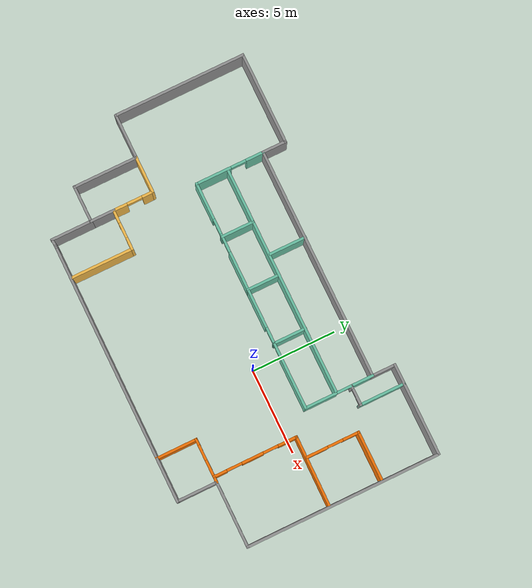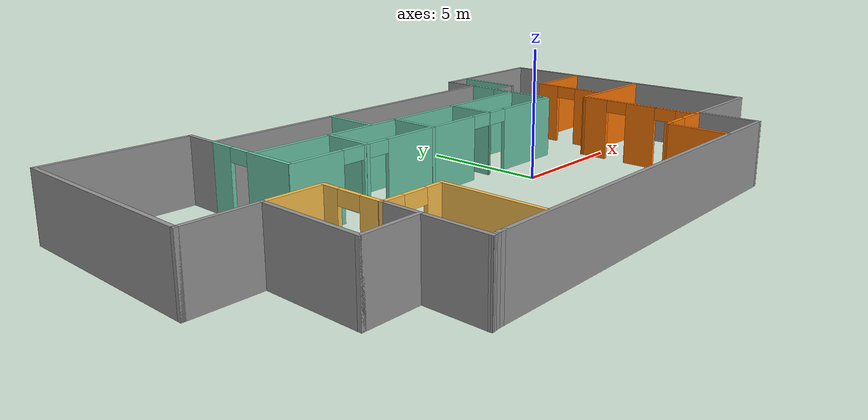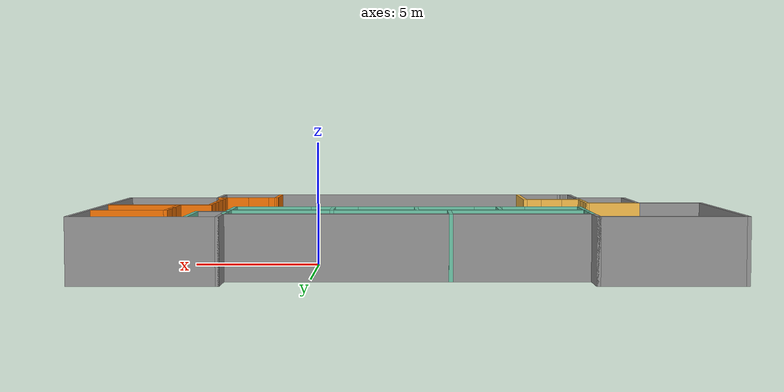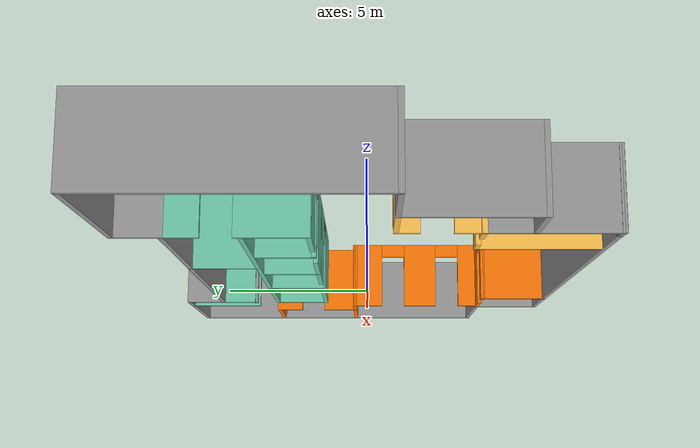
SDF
<?xml version='1.0'?>
<sdf version='1.6'>
  <model name='Building'>
    <pose frame=''>-3.6149 0.077124 0 0 -0 0</pose>
    <link name='Wall_0'>
      <collision name='Wall_0_Collision'>
        <geometry>
          <box>
            <size>15.4464 0.15 2.5</size>
          </box>
        </geometry>
        <pose frame=''>0 0 1.25 0 -0 0</pose>
      </collision>
      <visual name='Wall_0_Visual'>
        <pose frame=''>0 0 1.25 0 -0 0</pose>
        <geometry>
          <box>
            <size>15.4464 0.15 2.5</size>
          </box>
        </geometry>
        <material>
          <script>
            <uri>file://media/materials/scripts/gazebo.material</uri>
            <name>Gazebo/Grey</name>
          </script>
          <ambient>1 1 1 1</ambient>
        </material>
        <meta>
          <layer>0</layer>
        </meta>
      </visual>
      <pose frame=''>0.659705 -6.88049 0 0 -0 3.1411</pose>
    </link>
    <link name='Wall_100'>
      <collision name='Wall_100_Collision'>
        <geometry>
          <box>
            <size>4 0.15 2.5</size>
          </box>
        </geometry>
        <pose frame=''>0 0 1.25 0 -0 0</pose>
      </collision>
      <visual name='Wall_100_Visual'>
        <pose frame=''>0 0 1.25 0 -0 0</pose>
        <geometry>
          <box>
            <size>4 0.15 2.5</size>
          </box>
        </geometry>
        <material>
          <script>
            <uri>file://media/materials/scripts/gazebo.material</uri>
            <name>Gazebo/Grey</name>
          </script>
          <ambient>1 1 1 1</ambient>
        </material>
        <meta>
          <layer>0</layer>
        </meta>
      </visual>
      <pose frame=''>10.2329 -4.53429 0 0 -0 0</pose>
    </link>
    <link name='Wall_101'>
      <collision name='Wall_101_Collision'>
        <geometry>
          <box>
            <size>11.5 0.15 2.5</size>
          </box>
        </geometry>
        <pose frame=''>0 0 1.25 0 -0 0</pose>
      </collision>
      <visual name='Wall_101_Visual'>
        <pose frame=''>0 0 1.25 0 -0 0</pose>
        <geometry>
          <box>
            <size>11.5 0.15 2.5</size>
          </box>
        </geometry>
        <material>
          <script>
            <uri>file://media/materials/scripts/gazebo.material</uri>
            <name>Gazebo/Grey</name>
          </script>
          <ambient>1 1 1 1</ambient>
        </material>
        <meta>
          <layer>0</layer>
        </meta>
      </visual>
      <pose frame=''>12.1579 1.14071 0 0 -0 1.5708</pose>
    </link>
    <link name='Wall_103'>
      <collision name='Wall_103_Collision'>
        <geometry>
          <box>
            <size>4.2115 0.15 2.5</size>
          </box>
        </geometry>
        <pose frame=''>0 0 1.25 0 -0 0</pose>
      </collision>
      <visual name='Wall_103_Visual'>
        <pose frame=''>0 0 1.25 0 -0 0</pose>
        <geometry>
          <box>
            <size>4.2115 0.15 2.5</size>
          </box>
        </geometry>
        <material>
          <script>
            <uri>file://media/materials/scripts/gazebo.material</uri>
            <name>Gazebo/Grey</name>
          </script>
          <ambient>0.996078 0.47451 0.0196078 1</ambient>
        </material>
        <meta>
          <layer>0</layer>
        </meta>
      </visual>
      <pose frame=''>10.0108 0.393797 0 0 0 -0.00646</pose>
    </link>
    <link name='Wall_105'>
      <pose frame=''>9.21316 1.98664 0 0 -0 1.5708</pose>
      <visual name='Wall_105_Visual_0'>
        <pose frame=''>-0.959859 0 1.25 0 -0 0</pose>
        <geometry>
          <box>
            <size>1.33028 0.15 2.5</size>
          </box>
        </geometry>
        <material>
          <script>
            <uri>file://media/materials/scripts/gazebo.material</uri>
            <name>Gazebo/Grey</name>
          </script>
          <ambient>0.996078 0.47451 0.0196078 1</ambient>
        </material>
        <meta>
          <layer>0</layer>
        </meta>
      </visual>
      <collision name='Wall_105_Collision_0'>
        <geometry>
          <box>
            <size>1.33028 0.15 2.5</size>
          </box>
        </geometry>
        <pose frame=''>-0.959859 0 1.25 0 -0 0</pose>
      </collision>
      <visual name='Wall_105_Visual_1'>
        <pose frame=''>1.11514 0 1.25 0 -0 0</pose>
        <geometry>
          <box>
            <size>1.01972 0.15 2.5</size>
          </box>
        </geometry>
        <material>
          <script>
            <uri>file://media/materials/scripts/gazebo.material</uri>
            <name>Gazebo/Grey</name>
          </script>
          <ambient>0.996078 0.47451 0.0196078 1</ambient>
        </material>
        <meta>
          <layer>0</layer>
        </meta>
      </visual>
      <collision name='Wall_105_Collision_1'>
        <geometry>
          <box>
            <size>1.01972 0.15 2.5</size>
          </box>
        </geometry>
        <pose frame=''>1.11514 0 1.25 0 -0 0</pose>
      </collision>
      <visual name='Wall_105_Visual_2'>
        <pose frame=''>0.155281 0 2.25 0 -0 0</pose>
        <geometry>
          <box>
            <size>0.9 0.15 0.5</size>
          </box>
        </geometry>
        <material>
          <script>
            <uri>file://media/materials/scripts/gazebo.material</uri>
            <name>Gazebo/Grey</name>
          </script>
          <ambient>0.996078 0.47451 0.0196078 1</ambient>
        </material>
        <meta>
          <layer>0</layer>
        </meta>
      </visual>
      <collision name='Wall_105_Collision_2'>
        <geometry>
          <box>
            <size>0.9 0.15 0.5</size>
          </box>
        </geometry>
        <pose frame=''>0.155281 0 2.25 0 -0 0</pose>
      </collision>
    </link>
    <link name='Wall_106'>
      <collision name='Wall_106_Collision'>
        <geometry>
          <box>
            <size>2.90894 0.15 2.5</size>
          </box>
        </geometry>
        <pose frame=''>0 0 1.25 0 -0 0</pose>
      </collision>
      <visual name='Wall_106_Visual'>
        <pose frame=''>0 0 1.25 0 -0 0</pose>
        <geometry>
          <box>
            <size>2.90894 0.15 2.5</size>
          </box>
        </geometry>
        <material>
          <script>
            <uri>file://media/materials/scripts/gazebo.material</uri>
            <name>Gazebo/Grey</name>
          </script>
          <ambient>0.996078 0.47451 0.0196078 1</ambient>
        </material>
        <meta>
          <layer>0</layer>
        </meta>
      </visual>
      <pose frame=''>10.6189 3.53664 0 0 -0 0</pose>
    </link>
    <link name='Wall_108'>
      <collision name='Wall_108_Collision'>
        <geometry>
          <box>
            <size>13.75 0.15 2.5</size>
          </box>
        </geometry>
        <pose frame=''>0 0 1.25 0 -0 0</pose>
      </collision>
      <visual name='Wall_108_Visual'>
        <pose frame=''>0 0 1.25 0 -0 0</pose>
        <geometry>
          <box>
            <size>13.75 0.15 2.5</size>
          </box>
        </geometry>
        <material>
          <script>
            <uri>file://media/materials/scripts/gazebo.material</uri>
            <name>Gazebo/Grey</name>
          </script>
          <ambient>1 1 1 1</ambient>
        </material>
        <meta>
          <layer>0</layer>
        </meta>
      </visual>
      <pose frame=''>-0.00791 5.56584 0 0 -0 0</pose>
    </link>
    <link name='Wall_109'>
      <collision name='Wall_109_Collision'>
        <geometry>
          <box>
            <size>1.5 0.15 2.5</size>
          </box>
        </geometry>
        <pose frame=''>0 0 1.25 0 -0 0</pose>
      </collision>
      <visual name='Wall_109_Visual'>
        <pose frame=''>0 0 1.25 0 -0 0</pose>
        <geometry>
          <box>
            <size>1.5 0.15 2.5</size>
          </box>
        </geometry>
        <material>
          <script>
            <uri>file://media/materials/scripts/gazebo.material</uri>
            <name>Gazebo/Grey</name>
          </script>
          <ambient>1 1 1 1</ambient>
        </material>
        <meta>
          <layer>0</layer>
        </meta>
      </visual>
      <pose frame=''>6.79209 6.24084 0 0 -0 1.5708</pose>
    </link>
    <link name='Wall_110'>
      <collision name='Wall_110_Collision'>
        <geometry>
          <box>
            <size>5.5 0.15 2.5</size>
          </box>
        </geometry>
        <pose frame=''>0 0 1.25 0 -0 0</pose>
      </collision>
      <visual name='Wall_110_Visual'>
        <pose frame=''>0 0 1.25 0 -0 0</pose>
        <geometry>
          <box>
            <size>5.5 0.15 2.5</size>
          </box>
        </geometry>
        <material>
          <script>
            <uri>file://media/materials/scripts/gazebo.material</uri>
            <name>Gazebo/Grey</name>
          </script>
          <ambient>1 1 1 1</ambient>
        </material>
        <meta>
          <layer>0</layer>
        </meta>
      </visual>
      <pose frame=''>9.46709 6.91584 0 0 -0 0</pose>
    </link>
    <link name='Wall_112'>
      <pose frame=''>-6.80791 3.5629 0 0 0 -1.5708</pose>
      <visual name='Wall_112_Visual_0'>
        <pose frame=''>-1.51423 0 1.25 0 -0 0</pose>
        <geometry>
          <box>
            <size>1.12742 0.15 2.5</size>
          </box>
        </geometry>
        <material>
          <script>
            <uri>file://media/materials/scripts/gazebo.material</uri>
            <name>Gazebo/Grey</name>
          </script>
          <ambient>0.435294 0.796078 0.67451 1</ambient>
        </material>
        <meta>
          <layer>0</layer>
        </meta>
      </visual>
      <collision name='Wall_112_Collision_0'>
        <geometry>
          <box>
            <size>1.12742 0.15 2.5</size>
          </box>
        </geometry>
        <pose frame=''>-1.51423 0 1.25 0 -0 0</pose>
      </collision>
      <visual name='Wall_112_Visual_1'>
        <pose frame=''>1.01371 0 1.25 0 -0 0</pose>
        <geometry>
          <box>
            <size>2.12846 0.15 2.5</size>
          </box>
        </geometry>
        <material>
          <script>
            <uri>file://media/materials/scripts/gazebo.material</uri>
            <name>Gazebo/Grey</name>
          </script>
          <ambient>0.435294 0.796078 0.67451 1</ambient>
        </material>
        <meta>
          <layer>0</layer>
        </meta>
      </visual>
      <collision name='Wall_112_Collision_1'>
        <geometry>
          <box>
            <size>2.12846 0.15 2.5</size>
          </box>
        </geometry>
        <pose frame=''>1.01371 0 1.25 0 -0 0</pose>
      </collision>
      <visual name='Wall_112_Visual_2'>
        <pose frame=''>-0.500522 0 2.25 0 -0 0</pose>
        <geometry>
          <box>
            <size>0.9 0.15 0.5</size>
          </box>
        </geometry>
        <material>
          <script>
            <uri>file://media/materials/scripts/gazebo.material</uri>
            <name>Gazebo/Grey</name>
          </script>
          <ambient>0.435294 0.796078 0.67451 1</ambient>
        </material>
        <meta>
          <layer>0</layer>
        </meta>
      </visual>
      <collision name='Wall_112_Collision_2'>
        <geometry>
          <box>
            <size>0.9 0.15 0.5</size>
          </box>
        </geometry>
        <pose frame=''>-0.500522 0 2.25 0 -0 0</pose>
      </collision>
    </link>
    <link name='Wall_113'>
      <pose frame=''>-0.00791 1.53373 0 0 -0 0</pose>
      <visual name='Wall_113_Visual_0'>
        <pose frame=''>-5.76104 0 1.25 0 -0 0</pose>
        <geometry>
          <box>
            <size>2.22792 0.15 2.5</size>
          </box>
        </geometry>
        <material>
          <script>
            <uri>file://media/materials/scripts/gazebo.material</uri>
            <name>Gazebo/Grey</name>
          </script>
          <ambient>0.435294 0.796078 0.67451 1</ambient>
        </material>
        <meta>
          <layer>0</layer>
        </meta>
      </visual>
      <collision name='Wall_113_Collision_0'>
        <geometry>
          <box>
            <size>2.22792 0.15 2.5</size>
          </box>
        </geometry>
        <pose frame=''>-5.76104 0 1.25 0 -0 0</pose>
      </collision>
      <visual name='Wall_113_Visual_1'>
        <pose frame=''>-3.64064 0 1.25 0 -0 0</pose>
        <geometry>
          <box>
            <size>0.212887 0.15 2.5</size>
          </box>
        </geometry>
        <material>
          <script>
            <uri>file://media/materials/scripts/gazebo.material</uri>
            <name>Gazebo/Grey</name>
          </script>
          <ambient>0.435294 0.796078 0.67451 1</ambient>
        </material>
        <meta>
          <layer>0</layer>
        </meta>
      </visual>
      <collision name='Wall_113_Collision_1'>
        <geometry>
          <box>
            <size>0.212887 0.15 2.5</size>
          </box>
        </geometry>
        <pose frame=''>-3.64064 0 1.25 0 -0 0</pose>
      </collision>
      <visual name='Wall_113_Visual_2'>
        <pose frame=''>-0.340349 0 1.25 0 -0 0</pose>
        <geometry>
          <box>
            <size>4.58769 0.15 2.5</size>
          </box>
        </geometry>
        <material>
          <script>
            <uri>file://media/materials/scripts/gazebo.material</uri>
            <name>Gazebo/Grey</name>
          </script>
          <ambient>0.435294 0.796078 0.67451 1</ambient>
        </material>
        <meta>
          <layer>0</layer>
        </meta>
      </visual>
      <collision name='Wall_113_Collision_2'>
        <geometry>
          <box>
            <size>4.58769 0.15 2.5</size>
          </box>
        </geometry>
        <pose frame=''>-0.340349 0 1.25 0 -0 0</pose>
      </collision>
      <visual name='Wall_113_Visual_3'>
        <pose frame=''>2.88319 0 1.25 0 -0 0</pose>
        <geometry>
          <box>
            <size>0.059386 0.15 2.5</size>
          </box>
        </geometry>
        <material>
          <script>
            <uri>file://media/materials/scripts/gazebo.material</uri>
            <name>Gazebo/Grey</name>
          </script>
          <ambient>0.435294 0.796078 0.67451 1</ambient>
        </material>
        <meta>
          <layer>0</layer>
        </meta>
      </visual>
      <collision name='Wall_113_Collision_3'>
        <geometry>
          <box>
            <size>0.059386 0.15 2.5</size>
          </box>
        </geometry>
        <pose frame=''>2.88319 0 1.25 0 -0 0</pose>
      </collision>
      <visual name='Wall_113_Visual_4'>
        <pose frame=''>5.34394 0 1.25 0 -0 0</pose>
        <geometry>
          <box>
            <size>3.06212 0.15 2.5</size>
          </box>
        </geometry>
        <material>
          <script>
            <uri>file://media/materials/scripts/gazebo.material</uri>
            <name>Gazebo/Grey</name>
          </script>
          <ambient>0.435294 0.796078 0.67451 1</ambient>
        </material>
        <meta>
          <layer>0</layer>
        </meta>
      </visual>
      <collision name='Wall_113_Collision_4'>
        <geometry>
          <box>
            <size>3.06212 0.15 2.5</size>
          </box>
        </geometry>
        <pose frame=''>5.34394 0 1.25 0 -0 0</pose>
      </collision>
      <visual name='Wall_113_Visual_5'>
        <pose frame=''>-4.19708 0 2.25 0 -0 0</pose>
        <geometry>
          <box>
            <size>0.9 0.15 0.5</size>
          </box>
        </geometry>
        <material>
          <script>
            <uri>file://media/materials/scripts/gazebo.material</uri>
            <name>Gazebo/Grey</name>
          </script>
          <ambient>0.435294 0.796078 0.67451 1</ambient>
        </material>
        <meta>
          <layer>0</layer>
        </meta>
      </visual>
      <collision name='Wall_113_Collision_5'>
        <geometry>
          <box>
            <size>0.9 0.15 0.5</size>
          </box>
        </geometry>
        <pose frame=''>-4.19708 0 2.25 0 -0 0</pose>
      </collision>
      <visual name='Wall_113_Visual_6'>
        <pose frame=''>-3.08419 0 2.25 0 -0 0</pose>
        <geometry>
          <box>
            <size>0.9 0.15 0.5</size>
          </box>
        </geometry>
        <material>
          <script>
            <uri>file://media/materials/scripts/gazebo.material</uri>
            <name>Gazebo/Grey</name>
          </script>
          <ambient>0.435294 0.796078 0.67451 1</ambient>
        </material>
        <meta>
          <layer>0</layer>
        </meta>
      </visual>
      <collision name='Wall_113_Collision_6'>
        <geometry>
          <box>
            <size>0.9 0.15 0.5</size>
          </box>
        </geometry>
        <pose frame=''>-3.08419 0 2.25 0 -0 0</pose>
      </collision>
      <visual name='Wall_113_Visual_7'>
        <pose frame=''>2.40349 0 2.25 0 -0 0</pose>
        <geometry>
          <box>
            <size>0.9 0.15 0.5</size>
          </box>
        </geometry>
        <material>
          <script>
            <uri>file://media/materials/scripts/gazebo.material</uri>
            <name>Gazebo/Grey</name>
          </script>
          <ambient>0.435294 0.796078 0.67451 1</ambient>
        </material>
        <meta>
          <layer>0</layer>
        </meta>
      </visual>
      <collision name='Wall_113_Collision_7'>
        <geometry>
          <box>
            <size>0.9 0.15 0.5</size>
          </box>
        </geometry>
        <pose frame=''>2.40349 0 2.25 0 -0 0</pose>
      </collision>
      <visual name='Wall_113_Visual_8'>
        <pose frame=''>3.36288 0 2.25 0 -0 0</pose>
        <geometry>
          <box>
            <size>0.9 0.15 0.5</size>
          </box>
        </geometry>
        <material>
          <script>
            <uri>file://media/materials/scripts/gazebo.material</uri>
            <name>Gazebo/Grey</name>
          </script>
          <ambient>0.435294 0.796078 0.67451 1</ambient>
        </material>
        <meta>
          <layer>0</layer>
        </meta>
      </visual>
      <collision name='Wall_113_Collision_8'>
        <geometry>
          <box>
            <size>0.9 0.15 0.5</size>
          </box>
        </geometry>
        <pose frame=''>3.36288 0 2.25 0 -0 0</pose>
      </collision>
    </link>
    <link name='Wall_115'>
      <pose frame=''>6.79209 3.5629 0 0 -0 1.5708</pose>
      <visual name='Wall_115_Visual_0'>
        <pose frame=''>-1.1087 0 1.25 0 -0 0</pose>
        <geometry>
          <box>
            <size>1.93847 0.15 2.5</size>
          </box>
        </geometry>
        <material>
          <script>
            <uri>file://media/materials/scripts/gazebo.material</uri>
            <name>Gazebo/Grey</name>
          </script>
          <ambient>0.435294 0.796078 0.67451 1</ambient>
        </material>
        <meta>
          <layer>0</layer>
        </meta>
      </visual>
      <collision name='Wall_115_Collision_0'>
        <geometry>
          <box>
            <size>1.93847 0.15 2.5</size>
          </box>
        </geometry>
        <pose frame=''>-1.1087 0 1.25 0 -0 0</pose>
      </collision>
      <visual name='Wall_115_Visual_1'>
        <pose frame=''>1.41924 0 1.25 0 -0 0</pose>
        <geometry>
          <box>
            <size>1.3174 0.15 2.5</size>
          </box>
        </geometry>
        <material>
          <script>
            <uri>file://media/materials/scripts/gazebo.material</uri>
            <name>Gazebo/Grey</name>
          </script>
          <ambient>0.435294 0.796078 0.67451 1</ambient>
        </material>
        <meta>
          <layer>0</layer>
        </meta>
      </visual>
      <collision name='Wall_115_Collision_1'>
        <geometry>
          <box>
            <size>1.3174 0.15 2.5</size>
          </box>
        </geometry>
        <pose frame=''>1.41924 0 1.25 0 -0 0</pose>
      </collision>
      <visual name='Wall_115_Visual_2'>
        <pose frame=''>0.310536 0 2.25 0 -0 0</pose>
        <geometry>
          <box>
            <size>0.9 0.15 0.5</size>
          </box>
        </geometry>
        <material>
          <script>
            <uri>file://media/materials/scripts/gazebo.material</uri>
            <name>Gazebo/Grey</name>
          </script>
          <ambient>0.435294 0.796078 0.67451 1</ambient>
        </material>
        <meta>
          <layer>0</layer>
        </meta>
      </visual>
      <collision name='Wall_115_Collision_2'>
        <geometry>
          <box>
            <size>0.9 0.15 0.5</size>
          </box>
        </geometry>
        <pose frame=''>0.310536 0 2.25 0 -0 0</pose>
      </collision>
    </link>
    <link name='Wall_117'>
      <pose frame=''>7.37576 4.2932 0 0 -0 0</pose>
      <visual name='Wall_117_Visual_0'>
        <pose frame=''>-0.510796 0 1.25 0 -0 0</pose>
        <geometry>
          <box>
            <size>0.228407 0.15 2.5</size>
          </box>
        </geometry>
        <material>
          <script>
            <uri>file://media/materials/scripts/gazebo.material</uri>
            <name>Gazebo/Grey</name>
          </script>
          <ambient>1 1 1 1</ambient>
        </material>
        <meta>
          <layer>0</layer>
        </meta>
      </visual>
      <collision name='Wall_117_Collision_0'>
        <geometry>
          <box>
            <size>0.228407 0.15 2.5</size>
          </box>
        </geometry>
        <pose frame=''>-0.510796 0 1.25 0 -0 0</pose>
      </collision>
      <visual name='Wall_117_Visual_1'>
        <pose frame=''>0.564204 0 1.25 0 -0 0</pose>
        <geometry>
          <box>
            <size>0.121593 0.15 2.5</size>
          </box>
        </geometry>
        <material>
          <script>
            <uri>file://media/materials/scripts/gazebo.material</uri>
            <name>Gazebo/Grey</name>
          </script>
          <ambient>1 1 1 1</ambient>
        </material>
        <meta>
          <layer>0</layer>
        </meta>
      </visual>
      <collision name='Wall_117_Collision_1'>
        <geometry>
          <box>
            <size>0.121593 0.15 2.5</size>
          </box>
        </geometry>
        <pose frame=''>0.564204 0 1.25 0 -0 0</pose>
      </collision>
      <visual name='Wall_117_Visual_2'>
        <pose frame=''>0.053407 0 2.25 0 -0 0</pose>
        <geometry>
          <box>
            <size>0.9 0.15 0.5</size>
          </box>
        </geometry>
        <material>
          <script>
            <uri>file://media/materials/scripts/gazebo.material</uri>
            <name>Gazebo/Grey</name>
          </script>
          <ambient>1 1 1 1</ambient>
        </material>
        <meta>
          <layer>0</layer>
        </meta>
      </visual>
      <collision name='Wall_117_Collision_2'>
        <geometry>
          <box>
            <size>0.9 0.15 0.5</size>
          </box>
        </geometry>
        <pose frame=''>0.053407 0 2.25 0 -0 0</pose>
      </collision>
    </link>
    <link name='Wall_118'>
      <collision name='Wall_118_Collision'>
        <geometry>
          <box>
            <size>2.75 0.15 2.5</size>
          </box>
        </geometry>
        <pose frame=''>0 0 1.25 0 -0 0</pose>
      </collision>
      <visual name='Wall_118_Visual'>
        <pose frame=''>0 0 1.25 0 -0 0</pose>
        <geometry>
          <box>
            <size>2.75 0.15 2.5</size>
          </box>
        </geometry>
        <material>
          <script>
            <uri>file://media/materials/scripts/gazebo.material</uri>
            <name>Gazebo/Grey</name>
          </script>
          <ambient>0.435294 0.796078 0.67451 1</ambient>
        </material>
        <meta>
          <layer>0</layer>
        </meta>
      </visual>
      <pose frame=''>7.92576 5.5932 0 0 -0 1.5708</pose>
    </link>
    <link name='Wall_123'>
      <collision name='Wall_123_Collision'>
        <geometry>
          <box>
            <size>13.5 0.15 2.5</size>
          </box>
        </geometry>
        <pose frame=''>0 0 1.25 0 -0 0</pose>
      </collision>
      <visual name='Wall_123_Visual'>
        <pose frame=''>0 0 1.25 0 -0 0</pose>
        <geometry>
          <box>
            <size>13.5 0.15 2.5</size>
          </box>
        </geometry>
        <material>
          <script>
            <uri>file://media/materials/scripts/gazebo.material</uri>
            <name>Gazebo/Grey</name>
          </script>
          <ambient>0.435294 0.796078 0.67451 1</ambient>
        </material>
        <meta>
          <layer>0</layer>
        </meta>
      </visual>
      <pose frame=''>-0.010311 3.40121 0 0 -0 0</pose>
    </link>
    <link name='Wall_125'>
      <collision name='Wall_125_Collision'>
        <geometry>
          <box>
            <size>2 0.15 2.5</size>
          </box>
        </geometry>
        <pose frame=''>0 0 1.25 0 -0 0</pose>
      </collision>
      <visual name='Wall_125_Visual'>
        <pose frame=''>0 0 1.25 0 -0 0</pose>
        <geometry>
          <box>
            <size>2 0.15 2.5</size>
          </box>
        </geometry>
        <material>
          <script>
            <uri>file://media/materials/scripts/gazebo.material</uri>
            <name>Gazebo/Grey</name>
          </script>
          <ambient>0.435294 0.796078 0.67451 1</ambient>
        </material>
        <meta>
          <layer>0</layer>
        </meta>
      </visual>
      <pose frame=''>-3.58427 2.45408 0 0 0 -1.5708</pose>
    </link>
    <link name='Wall_127'>
      <collision name='Wall_127_Collision'>
        <geometry>
          <box>
            <size>2 0.15 2.5</size>
          </box>
        </geometry>
        <pose frame=''>0 0 1.25 0 -0 0</pose>
      </collision>
      <visual name='Wall_127_Visual'>
        <pose frame=''>0 0 1.25 0 -0 0</pose>
        <geometry>
          <box>
            <size>2 0.15 2.5</size>
          </box>
        </geometry>
        <material>
          <script>
            <uri>file://media/materials/scripts/gazebo.material</uri>
            <name>Gazebo/Grey</name>
          </script>
          <ambient>0.435294 0.796078 0.67451 1</ambient>
        </material>
        <meta>
          <layer>0</layer>
        </meta>
      </visual>
      <pose frame=''>-0.352492 2.4529 0 0 0 -1.5708</pose>
    </link>
    <link name='Wall_129'>
      <collision name='Wall_129_Collision'>
        <geometry>
          <box>
            <size>2 0.15 2.5</size>
          </box>
        </geometry>
        <pose frame=''>0 0 1.25 0 -0 0</pose>
      </collision>
      <visual name='Wall_129_Visual'>
        <pose frame=''>0 0 1.25 0 -0 0</pose>
        <geometry>
          <box>
            <size>2 0.15 2.5</size>
          </box>
        </geometry>
        <material>
          <script>
            <uri>file://media/materials/scripts/gazebo.material</uri>
            <name>Gazebo/Grey</name>
          </script>
          <ambient>0.435294 0.796078 0.67451 1</ambient>
        </material>
        <meta>
          <layer>0</layer>
        </meta>
      </visual>
      <pose frame=''>2.89949 2.48922 0 0 0 -1.5708</pose>
    </link>
    <link name='Wall_131'>
      <collision name='Wall_131_Collision'>
        <geometry>
          <box>
            <size>2.25 0.15 2.5</size>
          </box>
        </geometry>
        <pose frame=''>0 0 1.25 0 -0 0</pose>
      </collision>
      <visual name='Wall_131_Visual'>
        <pose frame=''>0 0 1.25 0 -0 0</pose>
        <geometry>
          <box>
            <size>2.25 0.15 2.5</size>
          </box>
        </geometry>
        <material>
          <script>
            <uri>file://media/materials/scripts/gazebo.material</uri>
            <name>Gazebo/Grey</name>
          </script>
          <ambient>0.435294 0.796078 0.67451 1</ambient>
        </material>
        <meta>
          <layer>0</layer>
        </meta>
      </visual>
      <pose frame=''>-1.5855 4.52422 0 0 0 -1.5708</pose>
    </link>
    <link name='Wall_49'>
      <collision name='Wall_49_Collision'>
        <geometry>
          <box>
            <size>0.36941 0.15 2.5</size>
          </box>
        </geometry>
        <pose frame=''>0 0 1.25 0 -0 0</pose>
      </collision>
      <visual name='Wall_49_Visual'>
        <pose frame=''>0 0 1.25 0 -0 0</pose>
        <geometry>
          <box>
            <size>0.36941 0.15 2.5</size>
          </box>
        </geometry>
        <material>
          <script>
            <uri>file://media/materials/scripts/gazebo.material</uri>
            <name>Gazebo/Grey</name>
          </script>
          <ambient>1 1 1 1</ambient>
        </material>
        <meta>
          <layer>0</layer>
        </meta>
      </visual>
      <pose frame=''>-7.09821 -6.8767 0 0 -0 0</pose>
    </link>
    <link name='Wall_57'>
      <collision name='Wall_57_Collision'>
        <geometry>
          <box>
            <size>2.25 0.15 2.5</size>
          </box>
        </geometry>
        <pose frame=''>0 0 1.25 0 -0 0</pose>
      </collision>
      <visual name='Wall_57_Visual'>
        <pose frame=''>0 0 1.25 0 -0 0</pose>
        <geometry>
          <box>
            <size>2.25 0.15 2.5</size>
          </box>
        </geometry>
        <material>
          <script>
            <uri>file://media/materials/scripts/gazebo.material</uri>
            <name>Gazebo/Grey</name>
          </script>
          <ambient>1 1 1 1</ambient>
        </material>
        <meta>
          <layer>0</layer>
        </meta>
      </visual>
      <pose frame=''>-8.50791 -4.55729 0 0 -0 0</pose>
    </link>
    <link name='Wall_58'>
      <collision name='Wall_58_Collision'>
        <geometry>
          <box>
            <size>2.5 0.15 2.5</size>
          </box>
        </geometry>
        <pose frame=''>0 0 1.25 0 -0 0</pose>
      </collision>
      <visual name='Wall_58_Visual'>
        <pose frame=''>0 0 1.25 0 -0 0</pose>
        <geometry>
          <box>
            <size>2.5 0.15 2.5</size>
          </box>
        </geometry>
        <material>
          <script>
            <uri>file://media/materials/scripts/gazebo.material</uri>
            <name>Gazebo/Grey</name>
          </script>
          <ambient>1 1 1 1</ambient>
        </material>
        <meta>
          <layer>0</layer>
        </meta>
      </visual>
      <pose frame=''>-7.45791 -5.73229 0 0 0 -1.5708</pose>
    </link>
    <link name='Wall_59'>
      <collision name='Wall_59_Collision'>
        <geometry>
          <box>
            <size>0.401865 0.15 2.5</size>
          </box>
        </geometry>
        <pose frame=''>0 0 1.25 0 -0 0</pose>
      </collision>
      <visual name='Wall_59_Visual'>
        <pose frame=''>0 0 1.25 0 -0 0</pose>
        <geometry>
          <box>
            <size>0.401865 0.15 2.5</size>
          </box>
        </geometry>
        <material>
          <script>
            <uri>file://media/materials/scripts/gazebo.material</uri>
            <name>Gazebo/Grey</name>
          </script>
          <ambient>1 1 1 1</ambient>
        </material>
        <meta>
          <layer>0</layer>
        </meta>
      </visual>
      <pose frame=''>-7.33291 -6.89199 0 0 -0 0.121756</pose>
    </link>
    <link name='Wall_6'>
      <collision name='Wall_6_Collision'>
        <geometry>
          <box>
            <size>5.5 0.15 2.5</size>
          </box>
        </geometry>
        <pose frame=''>0 0 1.25 0 -0 0</pose>
      </collision>
      <visual name='Wall_6_Visual'>
        <pose frame=''>0 0 1.25 0 -0 0</pose>
        <geometry>
          <box>
            <size>5.5 0.15 2.5</size>
          </box>
        </geometry>
        <material>
          <script>
            <uri>file://media/materials/scripts/gazebo.material</uri>
            <name>Gazebo/Grey</name>
          </script>
          <ambient>1 1 1 1</ambient>
        </material>
        <meta>
          <layer>0</layer>
        </meta>
      </visual>
      <pose frame=''>-9.48291 6.91584 0 0 -0 0</pose>
    </link>
    <link name='Wall_61'>
      <collision name='Wall_61_Collision'>
        <geometry>
          <box>
            <size>3.75 0.15 2.5</size>
          </box>
        </geometry>
        <pose frame=''>0 0 1.25 0 -0 0</pose>
      </collision>
      <visual name='Wall_61_Visual'>
        <pose frame=''>0 0 1.25 0 -0 0</pose>
        <geometry>
          <box>
            <size>3.75 0.15 2.5</size>
          </box>
        </geometry>
        <material>
          <script>
            <uri>file://media/materials/scripts/gazebo.material</uri>
            <name>Gazebo/Grey</name>
          </script>
          <ambient>1 0.764706 0.305882 1</ambient>
        </material>
        <meta>
          <layer>0</layer>
        </meta>
      </visual>
      <pose frame=''>-5.10791 -4.98734 0 0 -0 1.5708</pose>
    </link>
    <link name='Wall_62'>
      <pose frame=''>-6.28291 -3.18734 0 0 -0 3.14159</pose>
      <visual name='Wall_62_Visual_0'>
        <pose frame=''>-0.871798 0 1.25 0 -0 0</pose>
        <geometry>
          <box>
            <size>0.756404 0.15 2.5</size>
          </box>
        </geometry>
        <material>
          <script>
            <uri>file://media/materials/scripts/gazebo.material</uri>
            <name>Gazebo/Grey</name>
          </script>
          <ambient>1 0.764706 0.305882 1</ambient>
        </material>
        <meta>
          <layer>0</layer>
        </meta>
      </visual>
      <collision name='Wall_62_Collision_0'>
        <geometry>
          <box>
            <size>0.756404 0.15 2.5</size>
          </box>
        </geometry>
        <pose frame=''>-0.871798 0 1.25 0 -0 0</pose>
      </collision>
      <visual name='Wall_62_Visual_1'>
        <pose frame=''>0.828202 0 1.25 0 -0 0</pose>
        <geometry>
          <box>
            <size>0.843596 0.15 2.5</size>
          </box>
        </geometry>
        <material>
          <script>
            <uri>file://media/materials/scripts/gazebo.material</uri>
            <name>Gazebo/Grey</name>
          </script>
          <ambient>1 0.764706 0.305882 1</ambient>
        </material>
        <meta>
          <layer>0</layer>
        </meta>
      </visual>
      <collision name='Wall_62_Collision_1'>
        <geometry>
          <box>
            <size>0.843596 0.15 2.5</size>
          </box>
        </geometry>
        <pose frame=''>0.828202 0 1.25 0 -0 0</pose>
      </collision>
      <visual name='Wall_62_Visual_2'>
        <pose frame=''>-0.043596 0 2.25 0 -0 0</pose>
        <geometry>
          <box>
            <size>0.9 0.15 0.5</size>
          </box>
        </geometry>
        <material>
          <script>
            <uri>file://media/materials/scripts/gazebo.material</uri>
            <name>Gazebo/Grey</name>
          </script>
          <ambient>1 0.764706 0.305882 1</ambient>
        </material>
        <meta>
          <layer>0</layer>
        </meta>
      </visual>
      <collision name='Wall_62_Collision_2'>
        <geometry>
          <box>
            <size>0.9 0.15 0.5</size>
          </box>
        </geometry>
        <pose frame=''>-0.043596 0 2.25 0 -0 0</pose>
      </collision>
    </link>
    <link name='Wall_63'>
      <collision name='Wall_63_Collision'>
        <geometry>
          <box>
            <size>1.5399 0.15 2.5</size>
          </box>
        </geometry>
        <pose frame=''>0 0 1.25 0 -0 0</pose>
      </collision>
      <visual name='Wall_63_Visual'>
        <pose frame=''>0 0 1.25 0 -0 0</pose>
        <geometry>
          <box>
            <size>1.5399 0.15 2.5</size>
          </box>
        </geometry>
        <material>
          <script>
            <uri>file://media/materials/scripts/gazebo.material</uri>
            <name>Gazebo/Grey</name>
          </script>
          <ambient>1 1 1 1</ambient>
        </material>
        <meta>
          <layer>0</layer>
        </meta>
      </visual>
      <pose frame=''>-7.45791 -3.86234 0 0 0 -1.5708</pose>
    </link>
    <link name='Wall_65'>
      <pose frame=''>-7.45791 -1.99239 0 0 -0 1.5708</pose>
      <visual name='Wall_65_Visual_0'>
        <pose frame=''>-0.816064 0 1.25 0 -0 0</pose>
        <geometry>
          <box>
            <size>0.867872 0.15 2.5</size>
          </box>
        </geometry>
        <material>
          <script>
            <uri>file://media/materials/scripts/gazebo.material</uri>
            <name>Gazebo/Grey</name>
          </script>
          <ambient>1 0.764706 0.305882 1</ambient>
        </material>
        <meta>
          <layer>0</layer>
        </meta>
      </visual>
      <collision name='Wall_65_Collision_0'>
        <geometry>
          <box>
            <size>0.867872 0.15 2.5</size>
          </box>
        </geometry>
        <pose frame=''>-0.816064 0 1.25 0 -0 0</pose>
      </collision>
      <visual name='Wall_65_Visual_1'>
        <pose frame=''>0.883936 0 1.25 0 -0 0</pose>
        <geometry>
          <box>
            <size>0.732128 0.15 2.5</size>
          </box>
        </geometry>
        <material>
          <script>
            <uri>file://media/materials/scripts/gazebo.material</uri>
            <name>Gazebo/Grey</name>
          </script>
          <ambient>1 0.764706 0.305882 1</ambient>
        </material>
        <meta>
          <layer>0</layer>
        </meta>
      </visual>
      <collision name='Wall_65_Collision_1'>
        <geometry>
          <box>
            <size>0.732128 0.15 2.5</size>
          </box>
        </geometry>
        <pose frame=''>0.883936 0 1.25 0 -0 0</pose>
      </collision>
      <visual name='Wall_65_Visual_2'>
        <pose frame=''>0.067872 0 2.25 0 -0 0</pose>
        <geometry>
          <box>
            <size>0.9 0.15 0.5</size>
          </box>
        </geometry>
        <material>
          <script>
            <uri>file://media/materials/scripts/gazebo.material</uri>
            <name>Gazebo/Grey</name>
          </script>
          <ambient>1 0.764706 0.305882 1</ambient>
        </material>
        <meta>
          <layer>0</layer>
        </meta>
      </visual>
      <collision name='Wall_65_Collision_2'>
        <geometry>
          <box>
            <size>0.9 0.15 0.5</size>
          </box>
        </geometry>
        <pose frame=''>0.067872 0 2.25 0 -0 0</pose>
      </collision>
    </link>
    <link name='Wall_66'>
      <collision name='Wall_66_Collision'>
        <geometry>
          <box>
            <size>2.25 0.15 2.5</size>
          </box>
        </geometry>
        <pose frame=''>0 0 1.25 0 -0 0</pose>
      </collision>
      <visual name='Wall_66_Visual'>
        <pose frame=''>0 0 1.25 0 -0 0</pose>
        <geometry>
          <box>
            <size>2.25 0.15 2.5</size>
          </box>
        </geometry>
        <material>
          <script>
            <uri>file://media/materials/scripts/gazebo.material</uri>
            <name>Gazebo/Grey</name>
          </script>
          <ambient>1 0.764706 0.305882 1</ambient>
        </material>
        <meta>
          <layer>0</layer>
        </meta>
      </visual>
      <pose frame=''>-8.50791 -0.817388 0 0 -0 3.14159</pose>
    </link>
    <link name='Wall_67'>
      <collision name='Wall_67_Collision'>
        <geometry>
          <box>
            <size>2.75 0.15 2.5</size>
          </box>
        </geometry>
        <pose frame=''>0 0 1.25 0 -0 0</pose>
      </collision>
      <visual name='Wall_67_Visual'>
        <pose frame=''>0 0 1.25 0 -0 0</pose>
        <geometry>
          <box>
            <size>2.75 0.15 2.5</size>
          </box>
        </geometry>
        <material>
          <script>
            <uri>file://media/materials/scripts/gazebo.material</uri>
            <name>Gazebo/Grey</name>
          </script>
          <ambient>1 1 1 1</ambient>
        </material>
        <meta>
          <layer>0</layer>
        </meta>
      </visual>
      <pose frame=''>-10.8579 -0.817388 0 0 -0 3.14159</pose>
    </link>
    <link name='Wall_69'>
      <collision name='Wall_69_Collision'>
        <geometry>
          <box>
            <size>1.5 0.15 2.5</size>
          </box>
        </geometry>
        <pose frame=''>0 0 1.25 0 -0 0</pose>
      </collision>
      <visual name='Wall_69_Visual'>
        <pose frame=''>0 0 1.25 0 -0 0</pose>
        <geometry>
          <box>
            <size>1.5 0.15 2.5</size>
          </box>
        </geometry>
        <material>
          <script>
            <uri>file://media/materials/scripts/gazebo.material</uri>
            <name>Gazebo/Grey</name>
          </script>
          <ambient>1 1 1 1</ambient>
        </material>
        <meta>
          <layer>0</layer>
        </meta>
      </visual>
      <pose frame=''>-6.80791 6.24084 0 0 0 -1.5708</pose>
    </link>
    <link name='Wall_78'>
      <collision name='Wall_78_Collision'>
        <geometry>
          <box>
            <size>7.88323 0.15 2.5</size>
          </box>
        </geometry>
        <pose frame=''>0 0 1.25 0 -0 0</pose>
      </collision>
      <visual name='Wall_78_Visual'>
        <pose frame=''>0 0 1.25 0 -0 0</pose>
        <geometry>
          <box>
            <size>7.88323 0.15 2.5</size>
          </box>
        </geometry>
        <material>
          <script>
            <uri>file://media/materials/scripts/gazebo.material</uri>
            <name>Gazebo/Grey</name>
          </script>
          <ambient>1 1 1 1</ambient>
        </material>
        <meta>
          <layer>0</layer>
        </meta>
      </visual>
      <pose frame=''>-12.1579 3.04923 0 0 -0 1.5708</pose>
    </link>
    <link name='Wall_80'>
      <collision name='Wall_80_Collision'>
        <geometry>
          <box>
            <size>3.8899 0.15 2.5</size>
          </box>
        </geometry>
        <pose frame=''>0 0 1.25 0 -0 0</pose>
      </collision>
      <visual name='Wall_80_Visual'>
        <pose frame=''>0 0 1.25 0 -0 0</pose>
        <geometry>
          <box>
            <size>3.8899 0.15 2.5</size>
          </box>
        </geometry>
        <material>
          <script>
            <uri>file://media/materials/scripts/gazebo.material</uri>
            <name>Gazebo/Grey</name>
          </script>
          <ambient>1 1 1 1</ambient>
        </material>
        <meta>
          <layer>0</layer>
        </meta>
      </visual>
      <pose frame=''>-9.55791 -2.68734 0 0 -0 1.5708</pose>
    </link>
    <link name='Wall_82'>
      <collision name='Wall_82_Collision'>
        <geometry>
          <box>
            <size>2.5 0.15 2.5</size>
          </box>
        </geometry>
        <pose frame=''>0 0 1.25 0 -0 0</pose>
      </collision>
      <visual name='Wall_82_Visual'>
        <pose frame=''>0 0 1.25 0 -0 0</pose>
        <geometry>
          <box>
            <size>2.5 0.15 2.5</size>
          </box>
        </geometry>
        <material>
          <script>
            <uri>file://media/materials/scripts/gazebo.material</uri>
            <name>Gazebo/Grey</name>
          </script>
          <ambient>1 1 1 1</ambient>
        </material>
        <meta>
          <layer>0</layer>
        </meta>
      </visual>
      <pose frame=''>8.30791 -5.70929 0 0 -0 1.5708</pose>
    </link>
    <link name='Wall_91'>
      <collision name='Wall_91_Collision'>
        <geometry>
          <box>
            <size>2.5 0.15 2.5</size>
          </box>
        </geometry>
        <pose frame=''>0 0 1.25 0 -0 0</pose>
      </collision>
      <visual name='Wall_91_Visual'>
        <pose frame=''>0 0 1.25 0 -0 0</pose>
        <geometry>
          <box>
            <size>2.5 0.15 2.5</size>
          </box>
        </geometry>
        <material>
          <script>
            <uri>file://media/materials/scripts/gazebo.material</uri>
            <name>Gazebo/Grey</name>
          </script>
          <ambient>0.996078 0.47451 0.0196078 1</ambient>
        </material>
        <meta>
          <layer>0</layer>
        </meta>
      </visual>
      <pose frame=''>5.75012 -5.70795 0 0 -0 1.5708</pose>
    </link>
    <link name='Wall_92'>
      <pose frame=''>7.02902 -4.53362 0 0 0 -0.000524</pose>
      <visual name='Wall_92_Visual_0'>
        <pose frame=''>-1.14783 0 1.25 0 -0 0</pose>
        <geometry>
          <box>
            <size>0.412129 0.15 2.5</size>
          </box>
        </geometry>
        <material>
          <script>
            <uri>file://media/materials/scripts/gazebo.material</uri>
            <name>Gazebo/Grey</name>
          </script>
          <ambient>0.996078 0.47451 0.0196078 1</ambient>
        </material>
        <meta>
          <layer>0</layer>
        </meta>
      </visual>
      <collision name='Wall_92_Collision_0'>
        <geometry>
          <box>
            <size>0.412129 0.15 2.5</size>
          </box>
        </geometry>
        <pose frame=''>-1.14783 0 1.25 0 -0 0</pose>
      </collision>
      <visual name='Wall_92_Visual_1'>
        <pose frame=''>0.656065 0 1.25 0 -0 0</pose>
        <geometry>
          <box>
            <size>1.39566 0.15 2.5</size>
          </box>
        </geometry>
        <material>
          <script>
            <uri>file://media/materials/scripts/gazebo.material</uri>
            <name>Gazebo/Grey</name>
          </script>
          <ambient>0.996078 0.47451 0.0196078 1</ambient>
        </material>
        <meta>
          <layer>0</layer>
        </meta>
      </visual>
      <collision name='Wall_92_Collision_1'>
        <geometry>
          <box>
            <size>1.39566 0.15 2.5</size>
          </box>
        </geometry>
        <pose frame=''>0.656065 0 1.25 0 -0 0</pose>
      </collision>
      <visual name='Wall_92_Visual_2'>
        <pose frame=''>-0.491764 0 2.25 0 -0 0</pose>
        <geometry>
          <box>
            <size>0.9 0.15 0.5</size>
          </box>
        </geometry>
        <material>
          <script>
            <uri>file://media/materials/scripts/gazebo.material</uri>
            <name>Gazebo/Grey</name>
          </script>
          <ambient>0.996078 0.47451 0.0196078 1</ambient>
        </material>
        <meta>
          <layer>0</layer>
        </meta>
      </visual>
      <collision name='Wall_92_Collision_2'>
        <geometry>
          <box>
            <size>0.9 0.15 0.5</size>
          </box>
        </geometry>
        <pose frame=''>-0.491764 0 2.25 0 -0 0</pose>
      </collision>
    </link>
    <link name='Wall_95'>
      <pose frame=''>7.98011 -2.07056 0 0 -0 1.5708</pose>
      <visual name='Wall_95_Visual_0'>
        <pose frame=''>-2.11033 0 1.25 0 -0 0</pose>
        <geometry>
          <box>
            <size>0.831814 0.15 2.5</size>
          </box>
        </geometry>
        <material>
          <script>
            <uri>file://media/materials/scripts/gazebo.material</uri>
            <name>Gazebo/Grey</name>
          </script>
          <ambient>0.996078 0.47451 0.0196078 1</ambient>
        </material>
        <meta>
          <layer>0</layer>
        </meta>
      </visual>
      <collision name='Wall_95_Collision_0'>
        <geometry>
          <box>
            <size>0.831814 0.15 2.5</size>
          </box>
        </geometry>
        <pose frame=''>-2.11033 0 1.25 0 -0 0</pose>
      </collision>
      <visual name='Wall_95_Visual_1'>
        <pose frame=''>-0.155664 0 1.25 0 -0 0</pose>
        <geometry>
          <box>
            <size>1.27751 0.15 2.5</size>
          </box>
        </geometry>
        <material>
          <script>
            <uri>file://media/materials/scripts/gazebo.material</uri>
            <name>Gazebo/Grey</name>
          </script>
          <ambient>0.996078 0.47451 0.0196078 1</ambient>
        </material>
        <meta>
          <layer>0</layer>
        </meta>
      </visual>
      <collision name='Wall_95_Collision_1'>
        <geometry>
          <box>
            <size>1.27751 0.15 2.5</size>
          </box>
        </geometry>
        <pose frame=''>-0.155664 0 1.25 0 -0 0</pose>
      </collision>
      <visual name='Wall_95_Visual_2'>
        <pose frame=''>1.95466 0 1.25 0 -0 0</pose>
        <geometry>
          <box>
            <size>1.14314 0.15 2.5</size>
          </box>
        </geometry>
        <material>
          <script>
            <uri>file://media/materials/scripts/gazebo.material</uri>
            <name>Gazebo/Grey</name>
          </script>
          <ambient>0.996078 0.47451 0.0196078 1</ambient>
        </material>
        <meta>
          <layer>0</layer>
        </meta>
      </visual>
      <collision name='Wall_95_Collision_2'>
        <geometry>
          <box>
            <size>1.14314 0.15 2.5</size>
          </box>
        </geometry>
        <pose frame=''>1.95466 0 1.25 0 -0 0</pose>
      </collision>
      <visual name='Wall_95_Visual_3'>
        <pose frame=''>-1.24442 0 2.25 0 -0 0</pose>
        <geometry>
          <box>
            <size>0.9 0.15 0.5</size>
          </box>
        </geometry>
        <material>
          <script>
            <uri>file://media/materials/scripts/gazebo.material</uri>
            <name>Gazebo/Grey</name>
          </script>
          <ambient>0.996078 0.47451 0.0196078 1</ambient>
        </material>
        <meta>
          <layer>0</layer>
        </meta>
      </visual>
      <collision name='Wall_95_Collision_3'>
        <geometry>
          <box>
            <size>0.9 0.15 0.5</size>
          </box>
        </geometry>
        <pose frame=''>-1.24442 0 2.25 0 -0 0</pose>
      </collision>
      <visual name='Wall_95_Visual_4'>
        <pose frame=''>0.933092 0 2.25 0 -0 0</pose>
        <geometry>
          <box>
            <size>0.9 0.15 0.5</size>
          </box>
        </geometry>
        <material>
          <script>
            <uri>file://media/materials/scripts/gazebo.material</uri>
            <name>Gazebo/Grey</name>
          </script>
          <ambient>0.996078 0.47451 0.0196078 1</ambient>
        </material>
        <meta>
          <layer>0</layer>
        </meta>
      </visual>
      <collision name='Wall_95_Collision_4'>
        <geometry>
          <box>
            <size>0.9 0.15 0.5</size>
          </box>
        </geometry>
        <pose frame=''>0.933092 0 2.25 0 -0 0</pose>
      </collision>
    </link>
    <static>1</static>
  </model>
</sdf>
